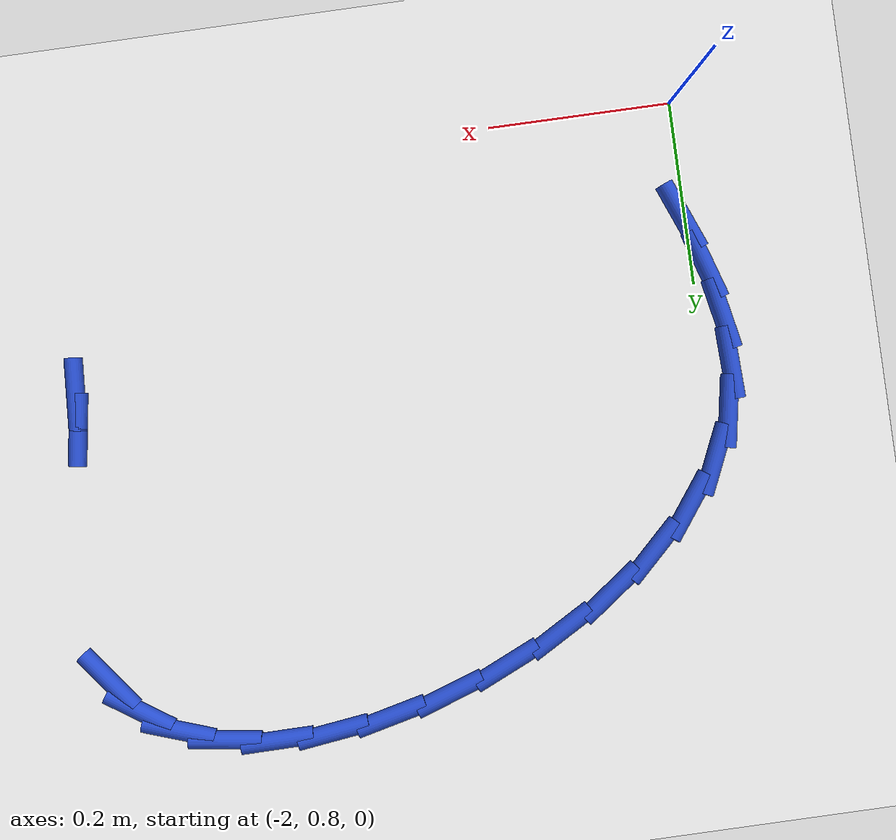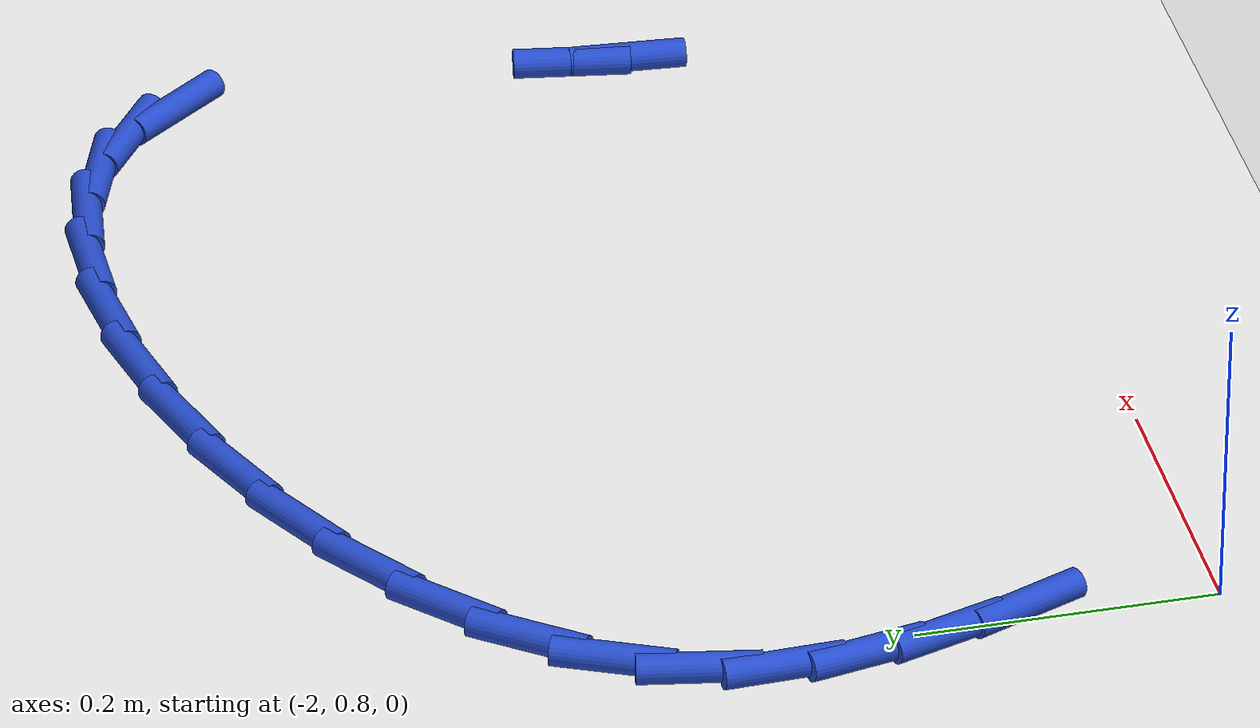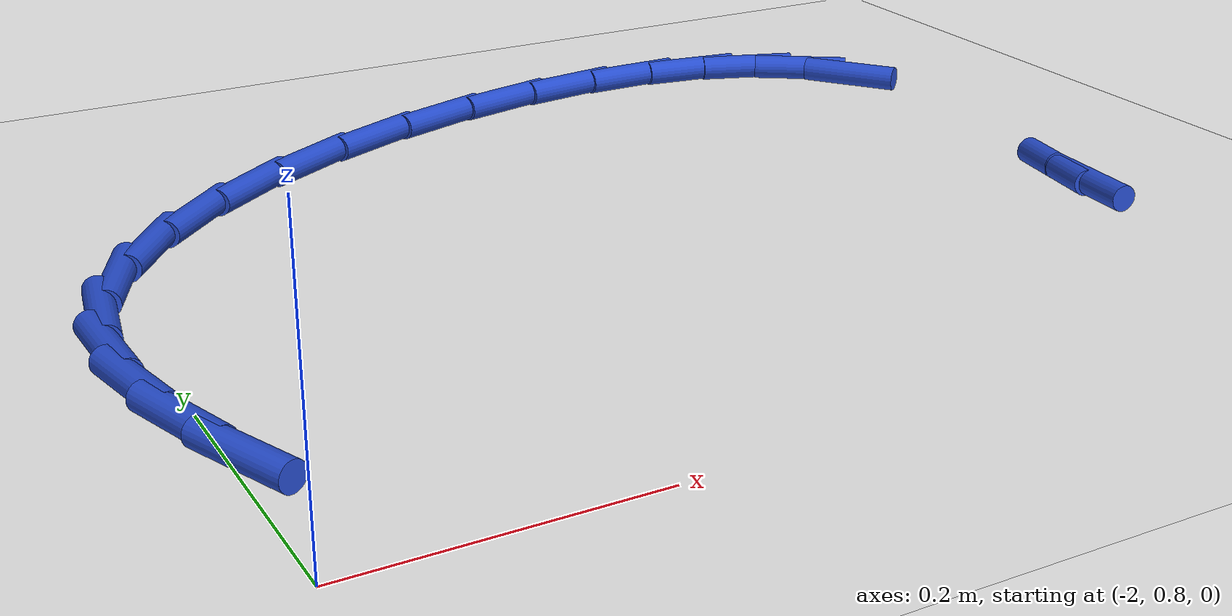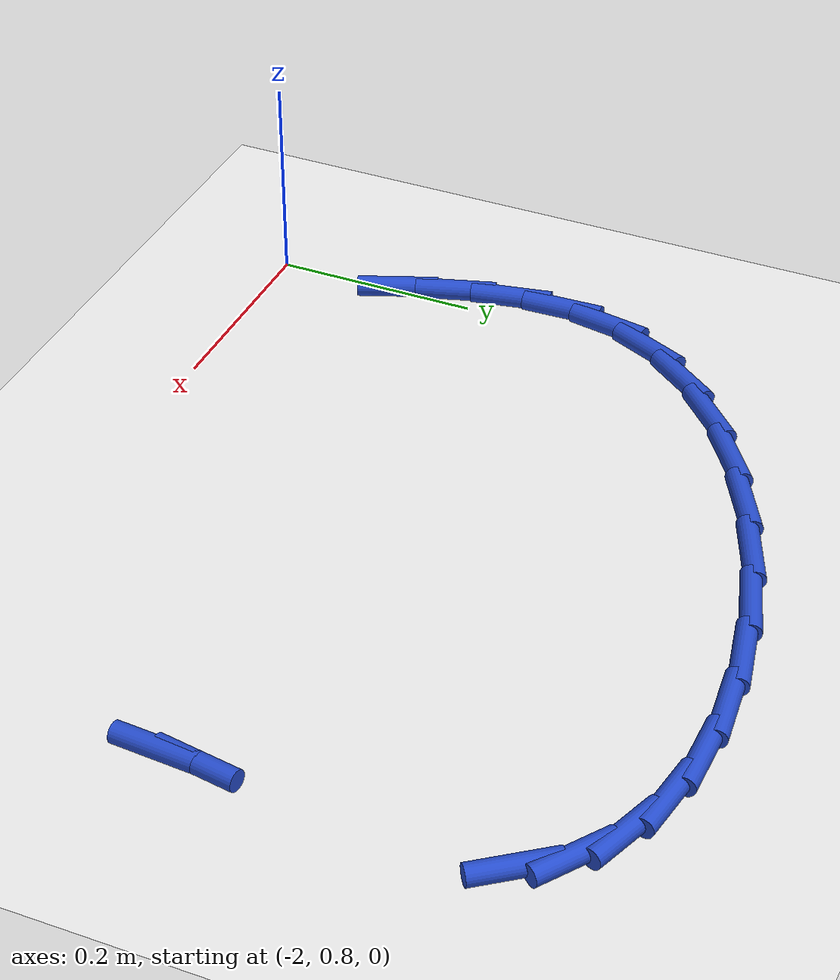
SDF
<sdf version="1.6">
 <world name="default">
  <model name="ground_plane">
   <static>1</static>
   <link name="link">
    <collision name="collision">
     <geometry><plane><normal>0 0 1</normal><size>100 100</size></plane></geometry>
     <surface><friction><ode><mu>100</mu><mu2>50</mu2></ode></friction></surface>
    </collision>
    <visual name="visual">
     <cast_shadows>0</cast_shadows>
     <geometry><plane><normal>0 0 1</normal><size>100 100</size></plane></geometry>
     <material>
      <script><uri>file://media/materials/scripts/gazebo.material</uri><name>Gazebo/WhiteGlow</name></script>
     </material>
    </visual>
   </link>
  </model>
  <model name="line">
   <link name="link_43">
    <pose>-1.3123570567298515 1.0280489426942956 0.01 0 1.57 1.5056751465555551</pose>
    <collision name="collision">
     <geometry><cylinder><radius>0.01</radius><length>0.08</length></cylinder></geometry>
    </collision>
    <visual name="visual">
     <material>
      <script><name>Gazebo/Blue</name><uri>file://media/materials/scripts/gazebo.material</uri></script>
     </material>
     <geometry><cylinder><radius>0.01</radius><length>0.08</length></cylinder></geometry>
    </visual>
   </link>
   <link name="link_44">
    <pose>-1.3098688821073046 1.066203293727551 0.01 0 1.57 1.4175036555119238</pose>
    <collision name="collision">
     <geometry><cylinder><radius>0.01</radius><length>0.08</length></cylinder></geometry>
    </collision>
    <visual name="visual">
     <material>
      <script><name>Gazebo/Blue</name><uri>file://media/materials/scripts/gazebo.material</uri></script>
     </material>
     <geometry><cylinder><radius>0.01</radius><length>0.08</length></cylinder></geometry>
    </visual>
   </link>
   <link name="link_49">
    <pose>-1.3060652395106764 1.3420470161652145 0.01 0 1.57 -0.9198314015674852</pose>
    <collision name="collision">
     <geometry><cylinder><radius>0.01</radius><length>0.08</length></cylinder></geometry>
    </collision>
    <visual name="visual">
     <material>
      <script><name>Gazebo/Blue</name><uri>file://media/materials/scripts/gazebo.material</uri></script>
     </material>
     <geometry><cylinder><radius>0.01</radius><length>0.08</length></cylinder></geometry>
    </visual>
   </link>
   <link name="link_50">
    <pose>-1.3344615258667254 1.379325786613444 0.01 0 1.57 -0.5969900036822664</pose>
    <collision name="collision">
     <geometry><cylinder><radius>0.01</radius><length>0.08</length></cylinder></geometry>
    </collision>
    <visual name="visual">
     <material>
      <script><name>Gazebo/Blue</name><uri>file://media/materials/scripts/gazebo.material</uri></script>
     </material>
     <geometry><cylinder><radius>0.01</radius><length>0.08</length></cylinder></geometry>
    </visual>
   </link>
   <link name="link_51">
    <pose>-1.3740971554364683 1.4062671970171843 0.01 0 1.57 -0.3382347308395008</pose>
    <collision name="collision">
     <geometry><cylinder><radius>0.01</radius><length>0.08</length></cylinder></geometry>
    </collision>
    <visual name="visual">
     <material>
      <script><name>Gazebo/Blue</name><uri>file://media/materials/scripts/gazebo.material</uri></script>
     </material>
     <geometry><cylinder><radius>0.01</radius><length>0.08</length></cylinder></geometry>
    </visual>
   </link>
   <link name="link_52">
    <pose>-1.4230205974114285 1.4234761135504843 0.01 0 1.57 -0.14266664585292355</pose>
    <collision name="collision">
     <geometry><cylinder><radius>0.01</radius><length>0.08</length></cylinder></geometry>
    </collision>
    <visual name="visual">
     <material>
      <script><name>Gazebo/Blue</name><uri>file://media/materials/scripts/gazebo.material</uri></script>
     </material>
     <geometry><cylinder><radius>0.01</radius><length>0.08</length></cylinder></geometry>
    </visual>
   </link>
   <link name="link_53">
    <pose>-1.4792803209831296 1.431557402387393 0.01 0 1.57 0.0071614713690252175</pose>
    <collision name="collision">
     <geometry><cylinder><radius>0.01</radius><length>0.08</length></cylinder></geometry>
    </collision>
    <visual name="visual">
     <material>
      <script><name>Gazebo/Blue</name><uri>file://media/materials/scripts/gazebo.material</uri></script>
     </material>
     <geometry><cylinder><radius>0.01</radius><length>0.08</length></cylinder></geometry>
    </visual>
   </link>
   <link name="link_54">
    <pose>-1.540924795343094 1.431115929701958 0.01 0 1.57 0.12775255188260023</pose>
    <collision name="collision">
     <geometry><cylinder><radius>0.01</radius><length>0.08</length></cylinder></geometry>
    </collision>
    <visual name="visual">
     <material>
      <script><name>Gazebo/Blue</name><uri>file://media/materials/scripts/gazebo.material</uri></script>
     </material>
     <geometry><cylinder><radius>0.01</radius><length>0.08</length></cylinder></geometry>
    </visual>
   </link>
   <link name="link_55">
    <pose>-1.6060024896828478 1.4227565616682294 0.01 0 1.57 0.23125246474559782</pose>
    <collision name="collision">
     <geometry><cylinder><radius>0.01</radius><length>0.08</length></cylinder></geometry>
    </collision>
    <visual name="visual">
     <material>
      <script><name>Gazebo/Blue</name><uri>file://media/materials/scripts/gazebo.material</uri></script>
     </material>
     <geometry><cylinder><radius>0.01</radius><length>0.08</length></cylinder></geometry>
    </visual>
   </link>
   <link name="link_56">
    <pose>-1.6725618731939114 1.4070841644602556 0.01 0 1.57 0.3265188963801273</pose>
    <collision name="collision">
     <geometry><cylinder><radius>0.01</radius><length>0.08</length></cylinder></geometry>
    </collision>
    <visual name="visual">
     <material>
      <script><name>Gazebo/Blue</name><uri>file://media/materials/scripts/gazebo.material</uri></script>
     </material>
     <geometry><cylinder><radius>0.01</radius><length>0.08</length></cylinder></geometry>
    </visual>
   </link>
   <link name="link_57">
    <pose>-1.7386514150678092 1.3847036042520844 0.01 0 1.57 0.42067288449298074</pose>
    <collision name="collision">
     <geometry><cylinder><radius>0.01</radius><length>0.08</length></cylinder></geometry>
    </collision>
    <visual name="visual">
     <material>
      <script><name>Gazebo/Blue</name><uri>file://media/materials/scripts/gazebo.material</uri></script>
     </material>
     <geometry><cylinder><radius>0.01</radius><length>0.08</length></cylinder></geometry>
    </visual>
   </link>
   <link name="link_58">
    <pose>-1.8023195844960653 1.356219747217765 0.01 0 1.57 0.5204073733523381</pose>
    <collision name="collision">
     <geometry><cylinder><radius>0.01</radius><length>0.08</length></cylinder></geometry>
    </collision>
    <visual name="visual">
     <material>
      <script><name>Gazebo/Blue</name><uri>file://media/materials/scripts/gazebo.material</uri></script>
     </material>
     <geometry><cylinder><radius>0.01</radius><length>0.08</length></cylinder></geometry>
    </visual>
   </link>
   <link name="link_59">
    <pose>-1.8616148506702022 1.3222374595313464 0.01 0 1.57 0.6331240848782561</pose>
    <collision name="collision">
     <geometry><cylinder><radius>0.01</radius><length>0.08</length></cylinder></geometry>
    </collision>
    <visual name="visual">
     <material>
      <script><name>Gazebo/Blue</name><uri>file://media/materials/scripts/gazebo.material</uri></script>
     </material>
     <geometry><cylinder><radius>0.01</radius><length>0.08</length></cylinder></geometry>
    </visual>
   </link>
   <link name="link_60">
    <pose>-1.9145856827817438 1.283361607366877 0.01 0 1.57 0.7679821357870458</pose>
    <collision name="collision">
     <geometry><cylinder><radius>0.01</radius><length>0.08</length></cylinder></geometry>
    </collision>
    <visual name="visual">
     <material>
      <script><name>Gazebo/Blue</name><uri>file://media/materials/scripts/gazebo.material</uri></script>
     </material>
     <geometry><cylinder><radius>0.01</radius><length>0.08</length></cylinder></geometry>
    </visual>
   </link>
   <link name="link_61">
    <pose>-1.9592805500222141 1.2401970568984049 0.01 0 1.57 0.9364961331188776</pose>
    <collision name="collision">
     <geometry><cylinder><radius>0.01</radius><length>0.08</length></cylinder></geometry>
    </collision>
    <visual name="visual">
     <material>
      <script><name>Gazebo/Blue</name><uri>file://media/materials/scripts/gazebo.material</uri></script>
     </material>
     <geometry><cylinder><radius>0.01</radius><length>0.08</length></cylinder></geometry>
    </visual>
   </link>
   <link name="link_62">
    <pose>-1.9937479215831346 1.1933486742999793 0.01 0 1.57 1.1508773828364496</pose>
    <collision name="collision">
     <geometry><cylinder><radius>0.01</radius><length>0.08</length></cylinder></geometry>
    </collision>
    <visual name="visual">
     <material>
      <script><name>Gazebo/Blue</name><uri>file://media/materials/scripts/gazebo.material</uri></script>
     </material>
     <geometry><cylinder><radius>0.01</radius><length>0.08</length></cylinder></geometry>
    </visual>
   </link>
   <link name="link_63">
    <pose>-2.0160392220537315 1.1434213904772648 0.01 0 1.57 1.3958968213287948</pose>
    <collision name="collision">
     <geometry><cylinder><radius>0.01</radius><length>0.08</length></cylinder></geometry>
    </collision>
    <visual name="visual">
     <material>
      <script><name>Gazebo/Blue</name><uri>file://media/materials/scripts/gazebo.material</uri></script>
     </material>
     <geometry><cylinder><radius>0.01</radius><length>0.08</length></cylinder></geometry>
    </visual>
   </link>
   <link name="link_64">
    <pose>-2.0252945711457717 1.0910439818557995 0.01 0 1.57 -1.5351315133772294</pose>
    <collision name="collision">
     <geometry><cylinder><radius>0.01</radius><length>0.08</length></cylinder></geometry>
    </collision>
    <visual name="visual">
     <material>
      <script><name>Gazebo/Blue</name><uri>file://media/materials/scripts/gazebo.material</uri></script>
     </material>
     <geometry><cylinder><radius>0.01</radius><length>0.08</length></cylinder></geometry>
    </visual>
   </link>
   <link name="link_65">
    <pose>-2.0233628794983916 1.0369045550873264 0.01 0 1.57 -1.3766292983681143</pose>
    <collision name="collision">
     <geometry><cylinder><radius>0.01</radius><length>0.08</length></cylinder></geometry>
    </collision>
    <visual name="visual">
     <material>
      <script><name>Gazebo/Blue</name><uri>file://media/materials/scripts/gazebo.material</uri></script>
     </material>
     <geometry><cylinder><radius>0.01</radius><length>0.08</length></cylinder></geometry>
    </visual>
   </link>
   <link name="link_66">
    <pose>-2.0125072651991713 0.9817002891448833 0.01 0 1.57 -1.2654511479101467</pose>
    <collision name="collision">
     <geometry><cylinder><radius>0.01</radius><length>0.08</length></cylinder></geometry>
    </collision>
    <visual name="visual">
     <material>
      <script><name>Gazebo/Blue</name><uri>file://media/materials/scripts/gazebo.material</uri></script>
     </material>
     <geometry><cylinder><radius>0.01</radius><length>0.08</length></cylinder></geometry>
    </visual>
   </link>
   <link name="link_67">
    <pose>-1.9949908463356891 0.9261283630015092 0.01 0 1.57 -1.1931467327325218</pose>
    <collision name="collision">
     <geometry><cylinder><radius>0.01</radius><length>0.08</length></cylinder></geometry>
    </collision>
    <visual name="visual">
     <material>
      <script><name>Gazebo/Blue</name><uri>file://media/materials/scripts/gazebo.material</uri></script>
     </material>
     <geometry><cylinder><radius>0.01</radius><length>0.08</length></cylinder></geometry>
    </visual>
   </link>
  </model>
 </world>
</sdf>
